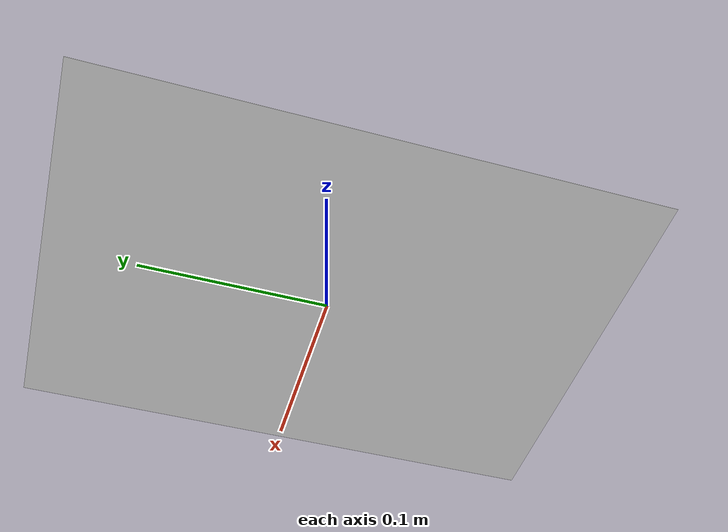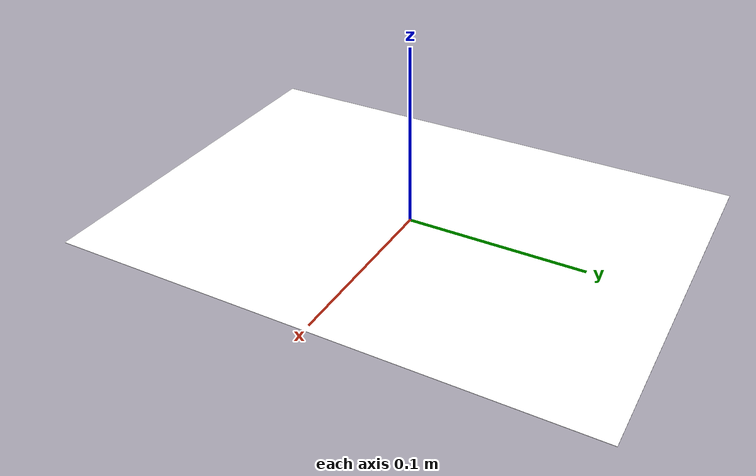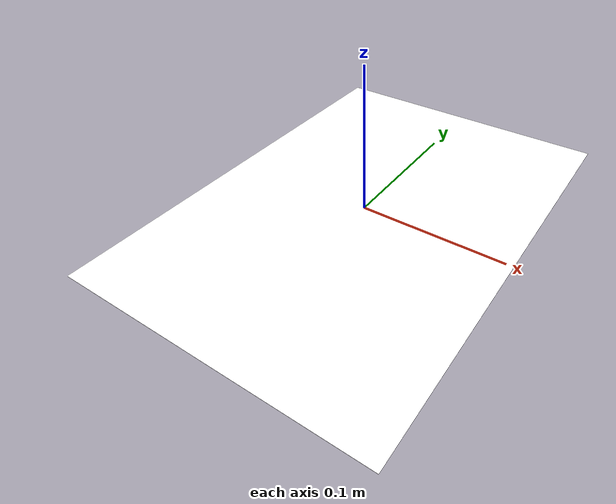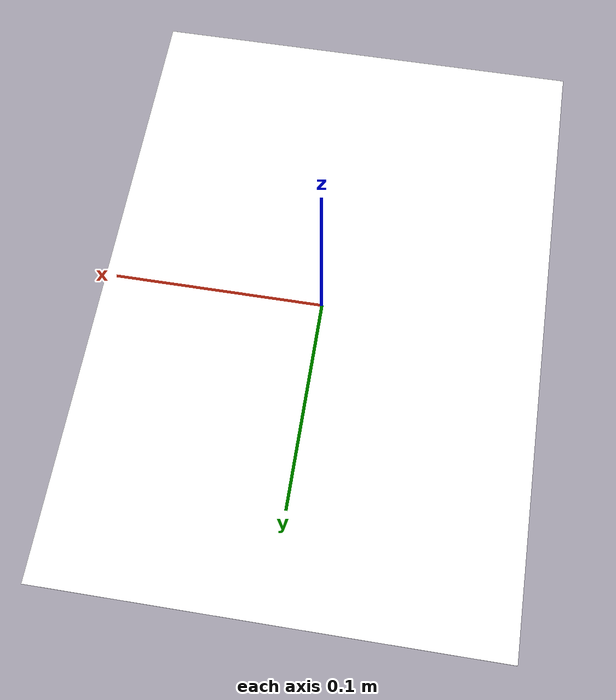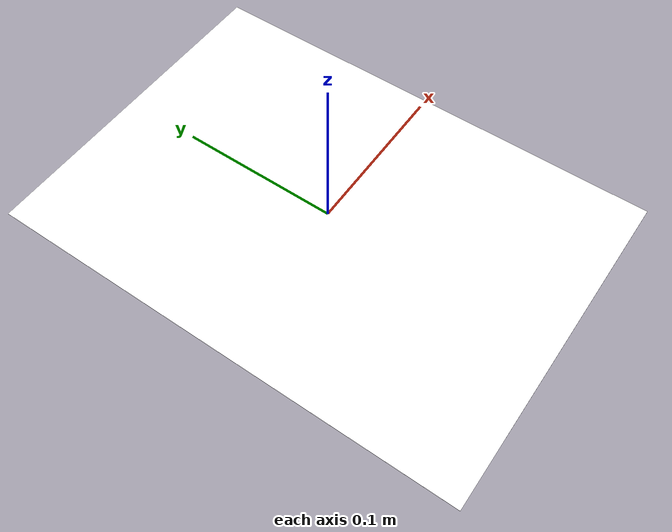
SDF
<?xml version="1.0" encoding="UTF-8"?>
<sdf version='1.9'>
  <model name='apriltag_36h11_11'>
    <static>true</static>
    <pose>0 0 0.001 0 0 0</pose>
    <link name='base'>
      <visual name='base_visual'>
        <geometry>
          <plane>
            <normal>0 0 1</normal>
            <size>0.21 0.297</size>
          </plane>
        </geometry>
        <material>
          <diffuse>1 1 1 1</diffuse>
          <specular>0.4 0.4 0.4 1</specular>
          <pbr>
            <metal>
              <albedo_map>model://apriltag/36h11_11/apriltag_36h11_11.png</albedo_map>
            </metal>
          </pbr>
        </material>
      </visual>
    </link>
  </model>
</sdf>
